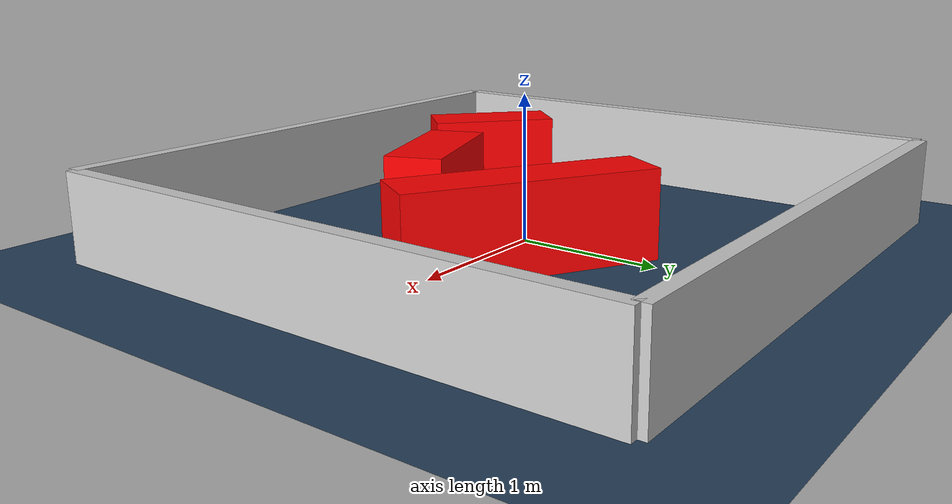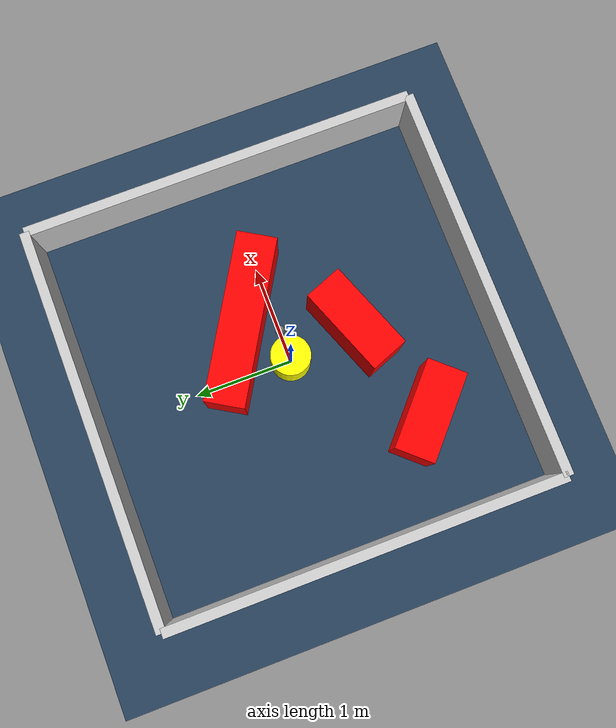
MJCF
<?xml version="1.0" ?>
<mujoco model="generated_environment">
  <option timestep="0.01" integrator="RK4" cone="elliptic"/>
  <default>
    <geom density="1"/>
  </default>
  <asset>
    <texture builtin="gradient" height="3072" rgb1="0.3 0.5 0.7" rgb2="0 0 0" type="skybox" width="512"/>
    <texture builtin="checker" height="300" mark="edge" markrgb="0.8 0.8 0.8" name="groundplane" rgb1="0.2 0.3 0.4" rgb2="0.1 0.2 0.3" type="2d" width="300"/>
    <material name="groundplane" reflectance="0.2" texrepeat="5 5" texture="groundplane" texuniform="true"/>
    <material name="robot" rgba="0.0 1.0 0.0 1"/>
  </asset>
  <worldbody>
    <light dir="0 0 -1" directional="true" pos="0 0 1.5"/>
    <geom condim="4" friction="1.0 0.005 0.001" material="groundplane" name="floor" size="0 0 0.05" type="plane"/>
    <body name="walls">
      <geom name="wall_1" condim="4" pos="-2.0 0.0 0.3" rgba="0.800000011920929 0.800000011920929 0.800000011920929 1.0" size="0.05 2.0 0.3" type="box"/>
      <geom name="wall_2" condim="4" pos="2.0 0.0 0.3" rgba="0.800000011920929 0.800000011920929 0.800000011920929 1.0" size="0.05 2.0 0.3" type="box"/>
      <geom name="wall_3" condim="4" pos="0.0 -2.0 0.3" rgba="0.800000011920929 0.800000011920929 0.800000011920929 1.0" size="2.0 0.05 0.3" type="box"/>
      <geom name="wall_4" condim="4" pos="0.0 2.0 0.3" rgba="0.800000011920929 0.800000011920929 0.800000011920929 1.0" size="2.0 0.05 0.3" type="box"/>
    </body>
    <body name="robot">
      <joint name="joint_x" type="slide" pos="0 0 0" axis="1 0 0"/>
      <joint name="joint_y" type="slide" pos="0 0 0" axis="0 1 0"/>
      <geom name="robot" type="sphere" pos="0.3 0.0 0.2" size="0.05" mass="5." friction="1.0 0.005 0.0001" condim="4" rgba="0.5 0.5 0.5 1.0"/>
      <site name="sensor_ball"/>
    </body>
    <body name="obstacle_movable_1">
      <geom name="obstacle_movable_1" condim="4" pos="0.0 0.0 0.2" euler="0 0 0.0" friction="1.0 0.005 0.001" rgba="1.0 1.0 0.0 1.0" size="0.2 0.2 0.0" type="cylinder" mass="0.1"/>
      <joint type="free"/>
    </body>
    <body name="obstacle_2_static">
      <geom name="obstacle_2_static" condim="4" pos="0.4692135534379205 0.33200655088433817 0.3" euler="0 0 149.03750773167206" friction="1.0 0.005 0.001" rgba="1 0 0 1" size="0.8429016225058088 0.2 0.3" type="box"/>
    </body>
    <body name="obstacle_3_static">
      <geom name="obstacle_3_static" condim="4" pos="-0.9854979207069837 -1.0368165857643779 0.3" euler="0 0 318.1680859376528" friction="1.0 0.005 0.001" rgba="1 0 0 1" size="0.45588007361565397 0.2 0.3" type="box"/>
    </body>
    <body name="obstacle_4_static">
      <geom name="obstacle_4_static" condim="4" pos="0.08278092557918182 -0.6967137271022301 0.3" euler="0 0 201.18983174448636" friction="1.0 0.005 0.001" rgba="1 0 0 1" size="0.47434902031520776 0.2 0.3" type="box"/>
    </body>
  </worldbody>
  <actuator>
    <motor name="actuator_x" joint="joint_x" gear="1" ctrlrange="-1 1"/>
    <motor name="actuator_y" joint="joint_y" gear="1" ctrlrange="-1 1"/>
  </actuator>
</mujoco>
